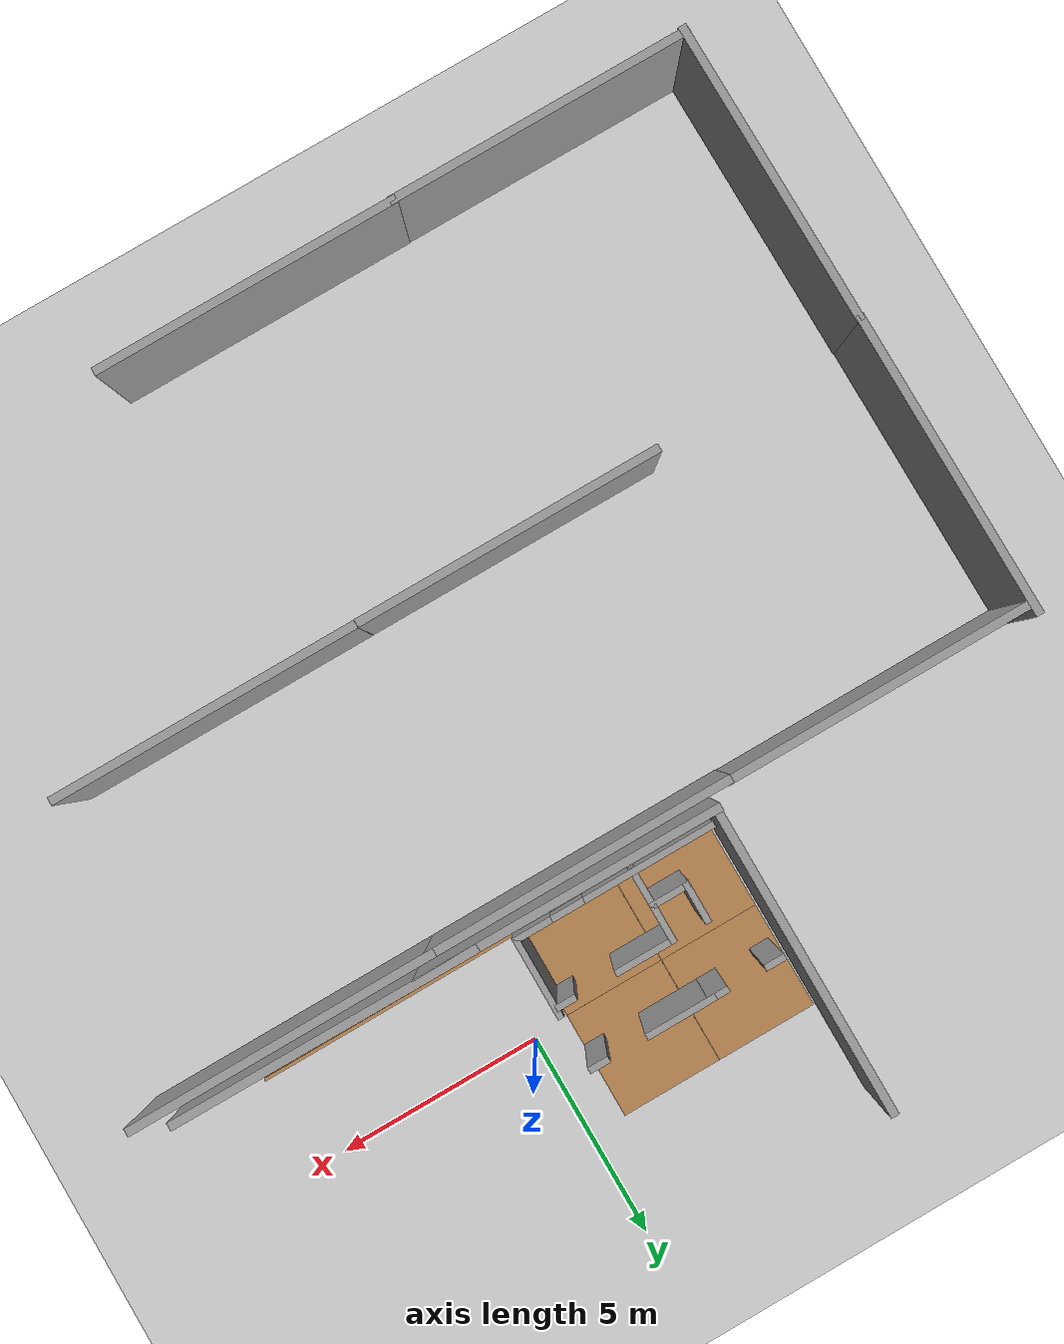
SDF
<sdf version="1.6">
 <world name="default">
  <model name="grey_wall_clone_0_clone_0_clone">
   <static>1</static>
   <link name="link">
    <pose>0 0 1.4 0 -0 0</pose>
    <collision name="collision"><geometry><box><size>7.5 0.2 2.8</size></box></geometry></collision>
    <visual name="visual">
     <cast_shadows>0</cast_shadows>
     <geometry><box><size>7.5 0.2 2.8</size></box></geometry>
     <material>
      <script>
       <uri>model://grey_wall/materials/scripts</uri>
       <uri>model://grey_wall/materials/textures</uri>
       <name>vrc/grey_wall</name>
      </script>
     </material>
    </visual>
   </link>
   <pose>3.51451 -2.7816 0 0 -0 3.13686</pose>
  </model>
  <model name="grey_wall_clone_0_clone_0_clone_0">
   <static>1</static>
   <link name="link">
    <pose>0 0 1.4 0 -0 0</pose>
    <collision name="collision"><geometry><box><size>7.5 0.2 2.8</size></box></geometry></collision>
    <visual name="visual">
     <cast_shadows>0</cast_shadows>
     <geometry><box><size>7.5 0.2 2.8</size></box></geometry>
     <material>
      <script>
       <uri>model://grey_wall/materials/scripts</uri>
       <uri>model://grey_wall/materials/textures</uri>
       <name>vrc/grey_wall</name>
      </script>
     </material>
    </visual>
   </link>
   <pose>-2.44151 -2.75862 0 0 -0 3.13686</pose>
  </model>
  <model name="grey_wall_clone_0_clone_0_clone_1">
   <static>1</static>
   <link name="link">
    <pose>0 0 1.4 0 -0 0</pose>
    <collision name="collision"><geometry><box><size>7.5 0.2 2.8</size></box></geometry></collision>
    <visual name="visual">
     <cast_shadows>0</cast_shadows>
     <geometry><box><size>7.5 0.2 2.8</size></box></geometry>
     <material>
      <script>
       <uri>model://grey_wall/materials/scripts</uri>
       <uri>model://grey_wall/materials/textures</uri>
       <name>vrc/grey_wall</name>
      </script>
     </material>
    </visual>
   </link>
   <pose>-6.06193 0.948078 0 0 0 -1.57307</pose>
  </model>
  <model name="world_frame">
   <link name="Wall_100">
    <pose>-15.3271 -4.993 -0.100255 0 -0 0</pose>
    <visual name="Wall_100_Visual">
     <pose>0 0 0.625 0 -0 0</pose>
     <geometry><box><size>6.495 0.07 1.25</size></box></geometry>
     <material>
      <script><uri>file://media/materials/scripts/gazebo.material</uri><name>Gazebo/Wood</name></script>
      <ambient>1 1 1 1</ambient>
      <shader type="pixel"/>
      <diffuse>1 1 1 1</diffuse>
      <specular>0.2 0.2 0.2 1</specular>
      <emissive>0 0 0 1</emissive>
     </material>
     <meta><layer>0</layer></meta>
    </visual>
    <collision name="Wall_100_Collision">
     <pose>0 0 0.625 0 -0 0</pose>
     <geometry><box><size>6.495 0.07 1.25</size></box></geometry>
     <surface>
      <friction>
       <ode><mu>1</mu><mu2>1</mu2><fdir1>0 0 0</fdir1><slip1>0</slip1><slip2>0</slip2></ode>
       <torsional>
        <coefficient>1</coefficient>
        <patch_radius>0</patch_radius>
        <surface_radius>0</surface_radius>
        <use_patch_radius>1</use_patch_radius>
        <ode><slip>0</slip></ode>
       </torsional>
      </friction>
      <bounce><restitution_coefficient>0</restitution_coefficient><threshold>1e+06</threshold></bounce>
      <contact>
       <collide_without_contact>0</collide_without_contact>
       <collide_without_contact_bitmask>1</collide_without_contact_bitmask>
       <collide_bitmask>1</collide_bitmask>
       <ode>
        <soft_cfm>0</soft_cfm>
        <soft_erp>0.2</soft_erp>
        <kp>1e+13</kp>
        <kd>1</kd>
        <max_vel>0.01</max_vel>
        <min_depth>0</min_depth>
       </ode>
       <bullet>
        <split_impulse>1</split_impulse>
        <split_impulse_penetration_threshold>-0.01</split_impulse_penetration_threshold>
        <soft_cfm>0</soft_cfm>
        <soft_erp>0.2</soft_erp>
        <kp>1e+13</kp>
        <kd>1</kd>
       </bullet>
      </contact>
     </surface>
    </collision>
   </link>
   <link name="Wall_131">
    <pose>-18.5396 -4.068 -0.100255 0 -0 1.5708</pose>
    <visual name="Wall_131_Visual">
     <pose>0 0 1.25 0 -0 0</pose>
     <geometry><box><size>2 0.15 2.5</size></box></geometry>
     <material>
      <script><uri>file://media/materials/scripts/gazebo.material</uri><name>Gazebo/Grey</name></script>
      <ambient>1 1 1 1</ambient>
      <shader type="pixel"/>
      <diffuse>0.7 0.7 0.7 1</diffuse>
      <specular>0.01 0.01 0.01 1</specular>
      <emissive>0 0 0 1</emissive>
     </material>
     <meta><layer>0</layer></meta>
    </visual>
    <collision name="Wall_131_Collision">
     <pose>0 0 1.25 0 -0 0</pose>
     <geometry><box><size>2 0.15 2.5</size></box></geometry>
     <surface>
      <friction>
       <ode><mu>1</mu><mu2>1</mu2><fdir1>0 0 0</fdir1><slip1>0</slip1><slip2>0</slip2></ode>
       <torsional>
        <coefficient>1</coefficient>
        <patch_radius>0</patch_radius>
        <surface_radius>0</surface_radius>
        <use_patch_radius>1</use_patch_radius>
        <ode><slip>0</slip></ode>
       </torsional>
      </friction>
      <bounce><restitution_coefficient>0</restitution_coefficient><threshold>1e+06</threshold></bounce>
      <contact>
       <collide_without_contact>0</collide_without_contact>
       <collide_without_contact_bitmask>1</collide_without_contact_bitmask>
       <collide_bitmask>1</collide_bitmask>
       <ode>
        <soft_cfm>0</soft_cfm>
        <soft_erp>0.2</soft_erp>
        <kp>1e+13</kp>
        <kd>1</kd>
        <max_vel>0.01</max_vel>
        <min_depth>0</min_depth>
       </ode>
       <bullet>
        <split_impulse>1</split_impulse>
        <split_impulse_penetration_threshold>-0.01</split_impulse_penetration_threshold>
        <soft_cfm>0</soft_cfm>
        <soft_erp>0.2</soft_erp>
        <kp>1e+13</kp>
        <kd>1</kd>
       </bullet>
      </contact>
     </surface>
    </collision>
   </link>
   <link name="Wall_138">
    <pose>-20.9646 -4.993 -0.100255 0 -0 3.14159</pose>
    <visual name="Wall_138_Visual_1">
     <pose>0.475664 0 0.5 0 -0 0</pose>
     <geometry><box><size>4.04867 0.15 1</size></box></geometry>
     <material>
      <script><uri>file://media/materials/scripts/gazebo.material</uri><name>Gazebo/Grey</name></script>
      <ambient>1 1 1 1</ambient>
      <shader type="pixel"/>
      <diffuse>0.7 0.7 0.7 1</diffuse>
      <specular>0.01 0.01 0.01 1</specular>
      <emissive>0 0 0 1</emissive>
     </material>
     <meta><layer>0</layer></meta>
    </visual>
    <visual name="Wall_138_Visual_0">
     <pose>-2.02434 0 1.25 0 -0 0</pose>
     <geometry><box><size>0.951328 0.15 2.5</size></box></geometry>
     <material>
      <script><uri>file://media/materials/scripts/gazebo.material</uri><name>Gazebo/Grey</name></script>
      <ambient>1 1 1 1</ambient>
      <shader type="pixel"/>
      <diffuse>0.7 0.7 0.7 1</diffuse>
      <specular>0.01 0.01 0.01 1</specular>
      <emissive>0 0 0 1</emissive>
     </material>
     <meta><layer>0</layer></meta>
    </visual>
    <visual name="Wall_138_Visual_2">
     <pose>0.875664 0 1.75 0 -0 0</pose>
     <geometry><box><size>3.24867 0.15 1.5</size></box></geometry>
     <material>
      <script><uri>file://media/materials/scripts/gazebo.material</uri><name>Gazebo/Grey</name></script>
      <ambient>1 1 1 1</ambient>
      <shader type="pixel"/>
      <diffuse>0.7 0.7 0.7 1</diffuse>
      <specular>0.01 0.01 0.01 1</specular>
      <emissive>0 0 0 1</emissive>
     </material>
     <meta><layer>0</layer></meta>
    </visual>
    <visual name="Wall_138_Visual_3">
     <pose>-1.14867 0 2.15 0 -0 0</pose>
     <geometry><box><size>0.8 0.15 0.7</size></box></geometry>
     <material>
      <script><uri>file://media/materials/scripts/gazebo.material</uri><name>Gazebo/Grey</name></script>
      <ambient>1 1 1 1</ambient>
      <shader type="pixel"/>
      <diffuse>0.7 0.7 0.7 1</diffuse>
      <specular>0.01 0.01 0.01 1</specular>
      <emissive>0 0 0 1</emissive>
     </material>
     <meta><layer>0</layer></meta>
    </visual>
    <collision name="Wall_138_Collision_3">
     <pose>-1.14867 0 2.15 0 -0 0</pose>
     <geometry><box><size>0.8 0.15 0.7</size></box></geometry>
     <surface>
      <friction>
       <ode><mu>1</mu><mu2>1</mu2><fdir1>0 0 0</fdir1><slip1>0</slip1><slip2>0</slip2></ode>
       <torsional>
        <coefficient>1</coefficient>
        <patch_radius>0</patch_radius>
        <surface_radius>0</surface_radius>
        <use_patch_radius>1</use_patch_radius>
        <ode><slip>0</slip></ode>
       </torsional>
      </friction>
      <bounce><restitution_coefficient>0</restitution_coefficient><threshold>1e+06</threshold></bounce>
      <contact>
       <collide_without_contact>0</collide_without_contact>
       <collide_without_contact_bitmask>1</collide_without_contact_bitmask>
       <collide_bitmask>1</collide_bitmask>
       <ode>
        <soft_cfm>0</soft_cfm>
        <soft_erp>0.2</soft_erp>
        <kp>1e+13</kp>
        <kd>1</kd>
        <max_vel>0.01</max_vel>
        <min_depth>0</min_depth>
       </ode>
       <bullet>
        <split_impulse>1</split_impulse>
        <split_impulse_penetration_threshold>-0.01</split_impulse_penetration_threshold>
        <soft_cfm>0</soft_cfm>
        <soft_erp>0.2</soft_erp>
        <kp>1e+13</kp>
        <kd>1</kd>
       </bullet>
      </contact>
     </surface>
    </collision>
    <collision name="Wall_138_Collision_2">
     <pose>0.875664 0 1.75 0 -0 0</pose>
     <geometry><box><size>3.24867 0.15 1.5</size></box></geometry>
     <surface>
      <friction>
       <ode><mu>1</mu><mu2>1</mu2><fdir1>0 0 0</fdir1><slip1>0</slip1><slip2>0</slip2></ode>
       <torsional>
        <coefficient>1</coefficient>
        <patch_radius>0</patch_radius>
        <surface_radius>0</surface_radius>
        <use_patch_radius>1</use_patch_radius>
        <ode><slip>0</slip></ode>
       </torsional>
      </friction>
      <bounce><restitution_coefficient>0</restitution_coefficient><threshold>1e+06</threshold></bounce>
      <contact>
       <collide_without_contact>0</collide_without_contact>
       <collide_without_contact_bitmask>1</collide_without_contact_bitmask>
       <collide_bitmask>1</collide_bitmask>
       <ode>
        <soft_cfm>0</soft_cfm>
        <soft_erp>0.2</soft_erp>
        <kp>1e+13</kp>
        <kd>1</kd>
        <max_vel>0.01</max_vel>
        <min_depth>0</min_depth>
       </ode>
       <bullet>
        <split_impulse>1</split_impulse>
        <split_impulse_penetration_threshold>-0.01</split_impulse_penetration_threshold>
        <soft_cfm>0</soft_cfm>
        <soft_erp>0.2</soft_erp>
        <kp>1e+13</kp>
        <kd>1</kd>
       </bullet>
      </contact>
     </surface>
    </collision>
    <collision name="Wall_138_Collision_0">
     <pose>-2.02434 0 1.25 0 -0 0</pose>
     <geometry><box><size>0.951328 0.15 2.5</size></box></geometry>
     <surface>
      <friction>
       <ode><mu>1</mu><mu2>1</mu2><fdir1>0 0 0</fdir1><slip1>0</slip1><slip2>0</slip2></ode>
       <torsional>
        <coefficient>1</coefficient>
        <patch_radius>0</patch_radius>
        <surface_radius>0</surface_radius>
        <use_patch_radius>1</use_patch_radius>
        <ode><slip>0</slip></ode>
       </torsional>
      </friction>
      <bounce><restitution_coefficient>0</restitution_coefficient><threshold>1e+06</threshold></bounce>
      <contact>
       <collide_without_contact>0</collide_without_contact>
       <collide_without_contact_bitmask>1</collide_without_contact_bitmask>
       <collide_bitmask>1</collide_bitmask>
       <ode>
        <soft_cfm>0</soft_cfm>
        <soft_erp>0.2</soft_erp>
        <kp>1e+13</kp>
        <kd>1</kd>
        <max_vel>0.01</max_vel>
        <min_depth>0</min_depth>
       </ode>
       <bullet>
        <split_impulse>1</split_impulse>
        <split_impulse_penetration_threshold>-0.01</split_impulse_penetration_threshold>
        <soft_cfm>0</soft_cfm>
        <soft_erp>0.2</soft_erp>
        <kp>1e+13</kp>
        <kd>1</kd>
       </bullet>
      </contact>
     </surface>
    </collision>
    <collision name="Wall_138_Collision_1">
     <pose>0.475664 0 0.5 0 -0 0</pose>
     <geometry><box><size>4.04867 0.15 1</size></box></geometry>
     <surface>
      <friction>
       <ode><mu>1</mu><mu2>1</mu2><fdir1>0 0 0</fdir1><slip1>0</slip1><slip2>0</slip2></ode>
       <torsional>
        <coefficient>1</coefficient>
        <patch_radius>0</patch_radius>
        <surface_radius>0</surface_radius>
        <use_patch_radius>1</use_patch_radius>
        <ode><slip>0</slip></ode>
       </torsional>
      </friction>
      <bounce><restitution_coefficient>0</restitution_coefficient><threshold>1e+06</threshold></bounce>
      <contact>
       <collide_without_contact>0</collide_without_contact>
       <collide_without_contact_bitmask>1</collide_without_contact_bitmask>
       <collide_bitmask>1</collide_bitmask>
       <ode>
        <soft_cfm>0</soft_cfm>
        <soft_erp>0.2</soft_erp>
        <kp>1e+13</kp>
        <kd>1</kd>
        <max_vel>0.01</max_vel>
        <min_depth>0</min_depth>
       </ode>
       <bullet>
        <split_impulse>1</split_impulse>
        <split_impulse_penetration_threshold>-0.01</split_impulse_penetration_threshold>
        <soft_cfm>0</soft_cfm>
        <soft_erp>0.2</soft_erp>
        <kp>1e+13</kp>
        <kd>1</kd>
       </bullet>
      </contact>
     </surface>
    </collision>
   </link>
   <link name="Wall_146">
    <pose>-21.8665 -4.15688 -0.100255 0 -0 0</pose>
    <visual name="Wall_146_Visual">
     <pose>0 0 1.25 0 -0 0</pose>
     <geometry><box><size>1 0.15 2.5</size></box></geometry>
     <material>
      <script><uri>file://media/materials/scripts/gazebo.material</uri><name>Gazebo/Grey</name></script>
      <ambient>1 1 1 1</ambient>
      <shader type="pixel"/>
      <diffuse>0.7 0.7 0.7 1</diffuse>
      <specular>0.01 0.01 0.01 1</specular>
      <emissive>0 0 0 1</emissive>
     </material>
     <meta><layer>0</layer></meta>
    </visual>
    <collision name="Wall_146_Collision">
     <pose>0 0 1.25 0 -0 0</pose>
     <geometry><box><size>1 0.15 2.5</size></box></geometry>
     <surface>
      <friction>
       <ode><mu>1</mu><mu2>1</mu2><fdir1>0 0 0</fdir1><slip1>0</slip1><slip2>0</slip2></ode>
       <torsional>
        <coefficient>1</coefficient>
        <patch_radius>0</patch_radius>
        <surface_radius>0</surface_radius>
        <use_patch_radius>1</use_patch_radius>
        <ode><slip>0</slip></ode>
       </torsional>
      </friction>
      <bounce><restitution_coefficient>0</restitution_coefficient><threshold>1e+06</threshold></bounce>
      <contact>
       <collide_without_contact>0</collide_without_contact>
       <collide_without_contact_bitmask>1</collide_without_contact_bitmask>
       <collide_bitmask>1</collide_bitmask>
       <ode>
        <soft_cfm>0</soft_cfm>
        <soft_erp>0.2</soft_erp>
        <kp>1e+13</kp>
        <kd>1</kd>
        <max_vel>0.01</max_vel>
        <min_depth>0</min_depth>
       </ode>
       <bullet>
        <split_impulse>1</split_impulse>
        <split_impulse_penetration_threshold>-0.01</split_impulse_penetration_threshold>
        <soft_cfm>0</soft_cfm>
        <soft_erp>0.2</soft_erp>
        <kp>1e+13</kp>
        <kd>1</kd>
       </bullet>
      </contact>
     </surface>
    </collision>
   </link>
   <link name="Wall_147">
    <pose>-21.4415 -3.73188 -0.100255 0 -0 1.5708</pose>
    <visual name="Wall_147_Visual">
     <pose>0 0 1.25 0 -0 0</pose>
     <geometry><box><size>1 0.15 2.5</size></box></geometry>
     <material>
      <script><uri>file://media/materials/scripts/gazebo.material</uri><name>Gazebo/Grey</name></script>
      <ambient>1 1 1 1</ambient>
      <shader type="pixel"/>
      <diffuse>0.7 0.7 0.7 1</diffuse>
      <specular>0.01 0.01 0.01 1</specular>
      <emissive>0 0 0 1</emissive>
     </material>
     <meta><layer>0</layer></meta>
    </visual>
    <collision name="Wall_147_Collision">
     <pose>0 0 1.25 0 -0 0</pose>
     <geometry><box><size>1 0.15 2.5</size></box></geometry>
     <surface>
      <friction>
       <ode><mu>1</mu><mu2>1</mu2><fdir1>0 0 0</fdir1><slip1>0</slip1><slip2>0</slip2></ode>
       <torsional>
        <coefficient>1</coefficient>
        <patch_radius>0</patch_radius>
        <surface_radius>0</surface_radius>
        <use_patch_radius>1</use_patch_radius>
        <ode><slip>0</slip></ode>
       </torsional>
      </friction>
      <bounce><restitution_coefficient>0</restitution_coefficient><threshold>1e+06</threshold></bounce>
      <contact>
       <collide_without_contact>0</collide_without_contact>
       <collide_without_contact_bitmask>1</collide_without_contact_bitmask>
       <collide_bitmask>1</collide_bitmask>
       <ode>
        <soft_cfm>0</soft_cfm>
        <soft_erp>0.2</soft_erp>
        <kp>1e+13</kp>
        <kd>1</kd>
        <max_vel>0.01</max_vel>
        <min_depth>0</min_depth>
       </ode>
       <bullet>
        <split_impulse>1</split_impulse>
        <split_impulse_penetration_threshold>-0.01</split_impulse_penetration_threshold>
        <soft_cfm>0</soft_cfm>
        <soft_erp>0.2</soft_erp>
        <kp>1e+13</kp>
        <kd>1</kd>
       </bullet>
      </contact>
     </surface>
    </collision>
   </link>
   <link name="Wall_150">
    <pose>-22.2915 -3.73188 -0.100255 0 -0 1.5708</pose>
    <visual name="Wall_150_Visual">
     <pose>0 0 1.25 0 -0 0</pose>
     <geometry><box><size>1 0.15 2.5</size></box></geometry>
     <material>
      <script><uri>file://media/materials/scripts/gazebo.material</uri><name>Gazebo/Grey</name></script>
      <ambient>1 1 1 1</ambient>
      <shader type="pixel"/>
      <diffuse>0.7 0.7 0.7 1</diffuse>
      <specular>0.01 0.01 0.01 1</specular>
      <emissive>0 0 0 1</emissive>
     </material>
     <meta><layer>0</layer></meta>
    </visual>
    <collision name="Wall_150_Collision">
     <pose>0 0 1.25 0 -0 0</pose>
     <geometry><box><size>1 0.15 2.5</size></box></geometry>
     <surface>
      <friction>
       <ode><mu>1</mu><mu2>1</mu2><fdir1>0 0 0</fdir1><slip1>0</slip1><slip2>0</slip2></ode>
       <torsional>
        <coefficient>1</coefficient>
        <patch_radius>0</patch_radius>
        <surface_radius>0</surface_radius>
        <use_patch_radius>1</use_patch_radius>
        <ode><slip>0</slip></ode>
       </torsional>
      </friction>
      <bounce><restitution_coefficient>0</restitution_coefficient><threshold>1e+06</threshold></bounce>
      <contact>
       <collide_without_contact>0</collide_without_contact>
       <collide_without_contact_bitmask>1</collide_without_contact_bitmask>
       <collide_bitmask>1</collide_bitmask>
       <ode>
        <soft_cfm>0</soft_cfm>
        <soft_erp>0.2</soft_erp>
        <kp>1e+13</kp>
        <kd>1</kd>
        <max_vel>0.01</max_vel>
        <min_depth>0</min_depth>
       </ode>
       <bullet>
        <split_impulse>1</split_impulse>
        <split_impulse_penetration_threshold>-0.01</split_impulse_penetration_threshold>
        <soft_cfm>0</soft_cfm>
        <soft_erp>0.2</soft_erp>
        <kp>1e+13</kp>
        <kd>1</kd>
       </bullet>
      </contact>
     </surface>
    </collision>
   </link>
   <link name="Wall_152">
    <pose>-21.4415 -4.58188 -0.100255 0 0 -1.5708</pose>
    <visual name="Wall_152_Visual">
     <pose>0 0 1.25 0 -0 0</pose>
     <geometry><box><size>1 0.15 2.5</size></box></geometry>
     <material>
      <script><uri>file://media/materials/scripts/gazebo.material</uri><name>Gazebo/Grey</name></script>
      <ambient>1 1 1 1</ambient>
      <shader type="pixel"/>
      <diffuse>0.7 0.7 0.7 1</diffuse>
      <specular>0.01 0.01 0.01 1</specular>
      <emissive>0 0 0 1</emissive>
     </material>
     <meta><layer>0</layer></meta>
    </visual>
    <collision name="Wall_152_Collision">
     <pose>0 0 1.25 0 -0 0</pose>
     <geometry><box><size>1 0.15 2.5</size></box></geometry>
     <surface>
      <friction>
       <ode><mu>1</mu><mu2>1</mu2><fdir1>0 0 0</fdir1><slip1>0</slip1><slip2>0</slip2></ode>
       <torsional>
        <coefficient>1</coefficient>
        <patch_radius>0</patch_radius>
        <surface_radius>0</surface_radius>
        <use_patch_radius>1</use_patch_radius>
        <ode><slip>0</slip></ode>
       </torsional>
      </friction>
      <bounce><restitution_coefficient>0</restitution_coefficient><threshold>1e+06</threshold></bounce>
      <contact>
       <collide_without_contact>0</collide_without_contact>
       <collide_without_contact_bitmask>1</collide_without_contact_bitmask>
       <collide_bitmask>1</collide_bitmask>
       <ode>
        <soft_cfm>0</soft_cfm>
        <soft_erp>0.2</soft_erp>
        <kp>1e+13</kp>
        <kd>1</kd>
        <max_vel>0.01</max_vel>
        <min_depth>0</min_depth>
       </ode>
       <bullet>
        <split_impulse>1</split_impulse>
        <split_impulse_penetration_threshold>-0.01</split_impulse_penetration_threshold>
        <soft_cfm>0</soft_cfm>
        <soft_erp>0.2</soft_erp>
        <kp>1e+13</kp>
        <kd>1</kd>
       </bullet>
      </contact>
     </surface>
    </collision>
   </link>
   <link name="Wall_154">
    <pose>-20.7665 -3.30688 -0.100255 0 -0 0</pose>
    <visual name="Wall_154_Visual">
     <pose>0 0 1.25 0 -0 0</pose>
     <geometry><box><size>1.5 0.15 2.5</size></box></geometry>
     <material>
      <script><uri>file://media/materials/scripts/gazebo.material</uri><name>Gazebo/Grey</name></script>
      <ambient>1 1 1 1</ambient>
      <shader type="pixel"/>
      <diffuse>0.7 0.7 0.7 1</diffuse>
      <specular>0.01 0.01 0.01 1</specular>
      <emissive>0 0 0 1</emissive>
     </material>
     <meta><layer>0</layer></meta>
    </visual>
    <collision name="Wall_154_Collision">
     <pose>0 0 1.25 0 -0 0</pose>
     <geometry><box><size>1.5 0.15 2.5</size></box></geometry>
     <surface>
      <friction>
       <ode><mu>1</mu><mu2>1</mu2><fdir1>0 0 0</fdir1><slip1>0</slip1><slip2>0</slip2></ode>
       <torsional>
        <coefficient>1</coefficient>
        <patch_radius>0</patch_radius>
        <surface_radius>0</surface_radius>
        <use_patch_radius>1</use_patch_radius>
        <ode><slip>0</slip></ode>
       </torsional>
      </friction>
      <bounce><restitution_coefficient>0</restitution_coefficient><threshold>1e+06</threshold></bounce>
      <contact>
       <collide_without_contact>0</collide_without_contact>
       <collide_without_contact_bitmask>1</collide_without_contact_bitmask>
       <collide_bitmask>1</collide_bitmask>
       <ode>
        <soft_cfm>0</soft_cfm>
        <soft_erp>0.2</soft_erp>
        <kp>1e+13</kp>
        <kd>1</kd>
        <max_vel>0.01</max_vel>
        <min_depth>0</min_depth>
       </ode>
       <bullet>
        <split_impulse>1</split_impulse>
        <split_impulse_penetration_threshold>-0.01</split_impulse_penetration_threshold>
        <soft_cfm>0</soft_cfm>
        <soft_erp>0.2</soft_erp>
        <kp>1e+13</kp>
        <kd>1</kd>
       </bullet>
      </contact>
     </surface>
    </collision>
   </link>
   <link name="Wall_159">
    <pose>-18.7934 -3.30493 -0.100255 0 -0 3.14159</pose>
    <visual name="Wall_159_Visual">
     <pose>0 0 1.25 0 -0 0</pose>
     <geometry><box><size>0.5 0.15 2.5</size></box></geometry>
     <material>
      <script><uri>file://media/materials/scripts/gazebo.material</uri><name>Gazebo/Grey</name></script>
      <ambient>1 1 1 1</ambient>
      <shader type="pixel"/>
      <diffuse>0.7 0.7 0.7 1</diffuse>
      <specular>0.01 0.01 0.01 1</specular>
      <emissive>0 0 0 1</emissive>
     </material>
     <meta><layer>0</layer></meta>
    </visual>
    <collision name="Wall_159_Collision">
     <pose>0 0 1.25 0 -0 0</pose>
     <geometry><box><size>0.5 0.15 2.5</size></box></geometry>
     <surface>
      <friction>
       <ode><mu>1</mu><mu2>1</mu2><fdir1>0 0 0</fdir1><slip1>0</slip1><slip2>0</slip2></ode>
       <torsional>
        <coefficient>1</coefficient>
        <patch_radius>0</patch_radius>
        <surface_radius>0</surface_radius>
        <use_patch_radius>1</use_patch_radius>
        <ode><slip>0</slip></ode>
       </torsional>
      </friction>
      <bounce><restitution_coefficient>0</restitution_coefficient><threshold>1e+06</threshold></bounce>
      <contact>
       <collide_without_contact>0</collide_without_contact>
       <collide_without_contact_bitmask>1</collide_without_contact_bitmask>
       <collide_bitmask>1</collide_bitmask>
       <ode>
        <soft_cfm>0</soft_cfm>
        <soft_erp>0.2</soft_erp>
        <kp>1e+13</kp>
        <kd>1</kd>
        <max_vel>0.01</max_vel>
        <min_depth>0</min_depth>
       </ode>
       <bullet>
        <split_impulse>1</split_impulse>
        <split_impulse_penetration_threshold>-0.01</split_impulse_penetration_threshold>
        <soft_cfm>0</soft_cfm>
        <soft_erp>0.2</soft_erp>
        <kp>1e+13</kp>
        <kd>1</kd>
       </bullet>
      </contact>
     </surface>
    </collision>
   </link>
   <link name="Wall_174">
    <pose>-20.7716 -1.813 -0.100255 0 -0 0</pose>
    <inertial>
     <inertia><ixx>0</ixx><ixy>0</ixy><ixz>0</ixz><iyy>0</iyy><iyz>0</iyz><izz>0</izz></inertia>
     <mass>0</mass>
    </inertial>
    <visual name="Wall_174_Visual">
     <pose>0 0 1.25 0 -0 0</pose>
     <geometry><box><size>1.72154 0.15 2.5</size></box></geometry>
     <material>
      <script><uri>file://media/materials/scripts/gazebo.material</uri><name>Gazebo/Grey</name></script>
      <ambient>1 1 1 1</ambient>
      <shader type="pixel"/>
      <diffuse>0.7 0.7 0.7 1</diffuse>
      <specular>0.01 0.01 0.01 1</specular>
      <emissive>0 0 0 1</emissive>
     </material>
     <meta><layer>0</layer></meta>
    </visual>
    <collision name="Wall_174_Collision">
     <pose>0 0 1.25 0 -0 0</pose>
     <geometry><box><size>1.72154 0.15 2.5</size></box></geometry>
     <surface>
      <friction>
       <ode><mu>1</mu><mu2>1</mu2><fdir1>0 0 0</fdir1><slip1>0</slip1><slip2>0</slip2></ode>
       <torsional>
        <coefficient>1</coefficient>
        <patch_radius>0</patch_radius>
        <surface_radius>0</surface_radius>
        <use_patch_radius>1</use_patch_radius>
        <ode><slip>0</slip></ode>
       </torsional>
      </friction>
      <bounce><restitution_coefficient>0</restitution_coefficient><threshold>1e+06</threshold></bounce>
      <contact>
       <collide_without_contact>0</collide_without_contact>
       <collide_without_contact_bitmask>1</collide_without_contact_bitmask>
       <collide_bitmask>1</collide_bitmask>
       <ode>
        <soft_cfm>0</soft_cfm>
        <soft_erp>0.2</soft_erp>
        <kp>1e+13</kp>
        <kd>1</kd>
        <max_vel>0.01</max_vel>
        <min_depth>0</min_depth>
       </ode>
       <bullet>
        <split_impulse>1</split_impulse>
        <split_impulse_penetration_threshold>-0.01</split_impulse_penetration_threshold>
        <soft_cfm>0</soft_cfm>
        <soft_erp>0.2</soft_erp>
        <kp>1e+13</kp>
        <kd>1</kd>
       </bullet>
      </contact>
     </surface>
    </collision>
   </link>
   <link name="Wall_176">
    <pose>-18.7419 -1.81759 -0.100255 0 -0 3.14159</pose>
    <visual name="Wall_176_Visual">
     <pose>0 0 1.25 0 -0 0</pose>
     <geometry><box><size>0.5 0.15 2.5</size></box></geometry>
     <material>
      <script><uri>file://media/materials/scripts/gazebo.material</uri><name>Gazebo/Grey</name></script>
      <ambient>1 1 1 1</ambient>
      <shader type="pixel"/>
      <diffuse>0.7 0.7 0.7 1</diffuse>
      <specular>0.01 0.01 0.01 1</specular>
      <emissive>0 0 0 1</emissive>
     </material>
     <meta><layer>0</layer></meta>
    </visual>
    <collision name="Wall_176_Collision">
     <pose>0 0 1.25 0 -0 0</pose>
     <geometry><box><size>0.5 0.15 2.5</size></box></geometry>
     <surface>
      <friction>
       <ode><mu>1</mu><mu2>1</mu2><fdir1>0 0 0</fdir1><slip1>0</slip1><slip2>0</slip2></ode>
       <torsional>
        <coefficient>1</coefficient>
        <patch_radius>0</patch_radius>
        <surface_radius>0</surface_radius>
        <use_patch_radius>1</use_patch_radius>
        <ode><slip>0</slip></ode>
       </torsional>
      </friction>
      <bounce><restitution_coefficient>0</restitution_coefficient><threshold>1e+06</threshold></bounce>
      <contact>
       <collide_without_contact>0</collide_without_contact>
       <collide_without_contact_bitmask>1</collide_without_contact_bitmask>
       <collide_bitmask>1</collide_bitmask>
       <ode>
        <soft_cfm>0</soft_cfm>
        <soft_erp>0.2</soft_erp>
        <kp>1e+13</kp>
        <kd>1</kd>
        <max_vel>0.01</max_vel>
        <min_depth>0</min_depth>
       </ode>
       <bullet>
        <split_impulse>1</split_impulse>
        <split_impulse_penetration_threshold>-0.01</split_impulse_penetration_threshold>
        <soft_cfm>0</soft_cfm>
        <soft_erp>0.2</soft_erp>
        <kp>1e+13</kp>
        <kd>1</kd>
       </bullet>
      </contact>
     </surface>
    </collision>
   </link>
   <link name="Wall_186">
    <pose>-21.6976 -1.815 -0.100255 0 -0 0</pose>
    <visual name="Wall_186_Visual">
     <pose>0 0 1.25 0 -0 0</pose>
     <geometry><box><size>0.5 0.15 2.5</size></box></geometry>
     <material>
      <script><uri>file://media/materials/scripts/gazebo.material</uri><name>Gazebo/Grey</name></script>
      <ambient>1 1 1 1</ambient>
      <shader type="pixel"/>
      <diffuse>0.7 0.7 0.7 1</diffuse>
      <specular>0.01 0.01 0.01 1</specular>
      <emissive>0 0 0 1</emissive>
     </material>
     <meta><layer>0</layer></meta>
    </visual>
    <collision name="Wall_186_Collision">
     <pose>0 0 1.25 0 -0 0</pose>
     <geometry><box><size>0.5 0.15 2.5</size></box></geometry>
     <surface>
      <friction>
       <ode><mu>1</mu><mu2>1</mu2><fdir1>0 0 0</fdir1><slip1>0</slip1><slip2>0</slip2></ode>
       <torsional>
        <coefficient>1</coefficient>
        <patch_radius>0</patch_radius>
        <surface_radius>0</surface_radius>
        <use_patch_radius>1</use_patch_radius>
        <ode><slip>0</slip></ode>
       </torsional>
      </friction>
      <bounce><restitution_coefficient>0</restitution_coefficient><threshold>1e+06</threshold></bounce>
      <contact>
       <collide_without_contact>0</collide_without_contact>
       <collide_without_contact_bitmask>1</collide_without_contact_bitmask>
       <collide_bitmask>1</collide_bitmask>
       <ode>
        <soft_cfm>0</soft_cfm>
        <soft_erp>0.2</soft_erp>
        <kp>1e+13</kp>
        <kd>1</kd>
        <max_vel>0.01</max_vel>
        <min_depth>0</min_depth>
       </ode>
       <bullet>
        <split_impulse>1</split_impulse>
        <split_impulse_penetration_threshold>-0.01</split_impulse_penetration_threshold>
        <soft_cfm>0</soft_cfm>
        <soft_erp>0.2</soft_erp>
        <kp>1e+13</kp>
        <kd>1</kd>
       </bullet>
      </contact>
     </surface>
    </collision>
   </link>
   <link name="Wall_191">
    <pose>-23.0904 -1.79885 -0.100255 0 -0 0</pose>
    <visual name="Wall_191_Visual">
     <pose>0 0 1.25 0 -0 0</pose>
     <geometry><box><size>0.5 0.15 2.5</size></box></geometry>
     <material>
      <script><uri>file://media/materials/scripts/gazebo.material</uri><name>Gazebo/Grey</name></script>
      <ambient>1 1 1 1</ambient>
      <shader type="pixel"/>
      <diffuse>0.7 0.7 0.7 1</diffuse>
      <specular>0.01 0.01 0.01 1</specular>
      <emissive>0 0 0 1</emissive>
     </material>
     <meta><layer>0</layer></meta>
    </visual>
    <collision name="Wall_191_Collision">
     <pose>0 0 1.25 0 -0 0</pose>
     <geometry><box><size>0.5 0.15 2.5</size></box></geometry>
     <surface>
      <friction>
       <ode><mu>1</mu><mu2>1</mu2><fdir1>0 0 0</fdir1><slip1>0</slip1><slip2>0</slip2></ode>
       <torsional>
        <coefficient>1</coefficient>
        <patch_radius>0</patch_radius>
        <surface_radius>0</surface_radius>
        <use_patch_radius>1</use_patch_radius>
        <ode><slip>0</slip></ode>
       </torsional>
      </friction>
      <bounce><restitution_coefficient>0</restitution_coefficient><threshold>1e+06</threshold></bounce>
      <contact>
       <collide_without_contact>0</collide_without_contact>
       <collide_without_contact_bitmask>1</collide_without_contact_bitmask>
       <collide_bitmask>1</collide_bitmask>
       <ode>
        <soft_cfm>0</soft_cfm>
        <soft_erp>0.2</soft_erp>
        <kp>1e+13</kp>
        <kd>1</kd>
        <max_vel>0.01</max_vel>
        <min_depth>0</min_depth>
       </ode>
       <bullet>
        <split_impulse>1</split_impulse>
        <split_impulse_penetration_threshold>-0.01</split_impulse_penetration_threshold>
        <soft_cfm>0</soft_cfm>
        <soft_erp>0.2</soft_erp>
        <kp>1e+13</kp>
        <kd>1</kd>
       </bullet>
      </contact>
     </surface>
    </collision>
   </link>
   <link name="Wall_229">
    <pose>-22.2321 -3.97188 -0.100255 0 0 -1.5708</pose>
    <visual name="Wall_229_Visual">
     <pose>0 0 0.0775 0 -0 0</pose>
     <geometry><box><size>2.625 2.5 0.155</size></box></geometry>
     <material>
      <script><uri>file://media/materials/scripts/gazebo.material</uri><name>Gazebo/Wood</name></script>
      <ambient>1 1 1 1</ambient>
      <shader type="pixel"/>
      <diffuse>1 1 1 1</diffuse>
      <specular>0.2 0.2 0.2 1</specular>
      <emissive>0 0 0 1</emissive>
     </material>
     <meta><layer>0</layer></meta>
    </visual>
    <collision name="Wall_229_Collision">
     <pose>0 0 0.0775 0 -0 0</pose>
     <geometry><box><size>2.625 2.5 0.155</size></box></geometry>
     <surface>
      <friction>
       <ode><mu>1</mu><mu2>1</mu2><fdir1>0 0 0</fdir1><slip1>0</slip1><slip2>0</slip2></ode>
       <torsional>
        <coefficient>1</coefficient>
        <patch_radius>0</patch_radius>
        <surface_radius>0</surface_radius>
        <use_patch_radius>1</use_patch_radius>
        <ode><slip>0</slip></ode>
       </torsional>
      </friction>
      <bounce><restitution_coefficient>0</restitution_coefficient><threshold>1e+06</threshold></bounce>
      <contact>
       <collide_without_contact>0</collide_without_contact>
       <collide_without_contact_bitmask>1</collide_without_contact_bitmask>
       <collide_bitmask>1</collide_bitmask>
       <ode>
        <soft_cfm>0</soft_cfm>
        <soft_erp>0.2</soft_erp>
        <kp>1e+13</kp>
        <kd>1</kd>
        <max_vel>0.01</max_vel>
        <min_depth>0</min_depth>
       </ode>
       <bullet>
        <split_impulse>1</split_impulse>
        <split_impulse_penetration_threshold>-0.01</split_impulse_penetration_threshold>
        <soft_cfm>0</soft_cfm>
        <soft_erp>0.2</soft_erp>
        <kp>1e+13</kp>
        <kd>1</kd>
       </bullet>
      </contact>
     </surface>
    </collision>
   </link>
   <link name="Wall_233">
    <pose>-22.2316 -1.34734 -0.100255 0 0 -1.5708</pose>
    <visual name="Wall_233_Visual">
     <pose>0 0 0.0775 0 -0 0</pose>
     <geometry><box><size>2.625 2.5 0.155</size></box></geometry>
     <material>
      <script><uri>file://media/materials/scripts/gazebo.material</uri><name>Gazebo/Wood</name></script>
      <ambient>1 1 1 1</ambient>
      <shader type="pixel"/>
      <diffuse>1 1 1 1</diffuse>
      <specular>0.2 0.2 0.2 1</specular>
      <emissive>0 0 0 1</emissive>
     </material>
     <meta><layer>0</layer></meta>
    </visual>
    <collision name="Wall_233_Collision">
     <pose>0 0 0.0775 0 -0 0</pose>
     <geometry><box><size>2.625 2.5 0.155</size></box></geometry>
     <surface>
      <friction>
       <ode><mu>1</mu><mu2>1</mu2><fdir1>0 0 0</fdir1><slip1>0</slip1><slip2>0</slip2></ode>
       <torsional>
        <coefficient>1</coefficient>
        <patch_radius>0</patch_radius>
        <surface_radius>0</surface_radius>
        <use_patch_radius>1</use_patch_radius>
        <ode><slip>0</slip></ode>
       </torsional>
      </friction>
      <bounce><restitution_coefficient>0</restitution_coefficient><threshold>1e+06</threshold></bounce>
      <contact>
       <collide_without_contact>0</collide_without_contact>
       <collide_without_contact_bitmask>1</collide_without_contact_bitmask>
       <collide_bitmask>1</collide_bitmask>
       <ode>
        <soft_cfm>0</soft_cfm>
        <soft_erp>0.2</soft_erp>
        <kp>1e+13</kp>
        <kd>1</kd>
        <max_vel>0.01</max_vel>
        <min_depth>0</min_depth>
       </ode>
       <bullet>
        <split_impulse>1</split_impulse>
        <split_impulse_penetration_threshold>-0.01</split_impulse_penetration_threshold>
        <soft_cfm>0</soft_cfm>
        <soft_erp>0.2</soft_erp>
        <kp>1e+13</kp>
        <kd>1</kd>
       </bullet>
      </contact>
     </surface>
    </collision>
   </link>
   <link name="Wall_237">
    <pose>-19.7267 -1.34744 -0.100255 0 0 -1.5708</pose>
    <visual name="Wall_237_Visual">
     <pose>0 0 0.0775 0 -0 0</pose>
     <geometry><box><size>2.625 2.5 0.155</size></box></geometry>
     <material>
      <script><uri>file://media/materials/scripts/gazebo.material</uri><name>Gazebo/Wood</name></script>
      <ambient>1 1 1 1</ambient>
      <shader type="pixel"/>
      <diffuse>1 1 1 1</diffuse>
      <specular>0.2 0.2 0.2 1</specular>
      <emissive>0 0 0 1</emissive>
     </material>
     <meta><layer>0</layer></meta>
    </visual>
    <collision name="Wall_237_Collision">
     <pose>0 0 0.0775 0 -0 0</pose>
     <geometry><box><size>2.625 2.5 0.155</size></box></geometry>
     <surface>
      <friction>
       <ode><mu>1</mu><mu2>1</mu2><fdir1>0 0 0</fdir1><slip1>0</slip1><slip2>0</slip2></ode>
       <torsional>
        <coefficient>1</coefficient>
        <patch_radius>0</patch_radius>
        <surface_radius>0</surface_radius>
        <use_patch_radius>1</use_patch_radius>
        <ode><slip>0</slip></ode>
       </torsional>
      </friction>
      <bounce><restitution_coefficient>0</restitution_coefficient><threshold>1e+06</threshold></bounce>
      <contact>
       <collide_without_contact>0</collide_without_contact>
       <collide_without_contact_bitmask>1</collide_without_contact_bitmask>
       <collide_bitmask>1</collide_bitmask>
       <ode>
        <soft_cfm>0</soft_cfm>
        <soft_erp>0.2</soft_erp>
        <kp>1e+13</kp>
        <kd>1</kd>
        <max_vel>0.01</max_vel>
        <min_depth>0</min_depth>
       </ode>
       <bullet>
        <split_impulse>1</split_impulse>
        <split_impulse_penetration_threshold>-0.01</split_impulse_penetration_threshold>
        <soft_cfm>0</soft_cfm>
        <soft_erp>0.2</soft_erp>
        <kp>1e+13</kp>
        <kd>1</kd>
       </bullet>
      </contact>
     </surface>
    </collision>
   </link>
   <link name="Wall_239">
    <pose>-19.7263 -3.97316 -0.100255 0 0 -1.5708</pose>
    <visual name="Wall_239_Visual">
     <pose>0 0 0.0775 0 -0 0</pose>
     <geometry><box><size>2.625 2.5 0.155</size></box></geometry>
     <material>
      <script><uri>file://media/materials/scripts/gazebo.material</uri><name>Gazebo/Wood</name></script>
      <ambient>1 1 1 1</ambient>
      <shader type="pixel"/>
      <diffuse>1 1 1 1</diffuse>
      <specular>0.2 0.2 0.2 1</specular>
      <emissive>0 0 0 1</emissive>
     </material>
     <meta><layer>0</layer></meta>
    </visual>
    <collision name="Wall_239_Collision">
     <pose>0 0 0.0775 0 -0 0</pose>
     <geometry><box><size>2.625 2.5 0.155</size></box></geometry>
     <surface>
      <friction>
       <ode><mu>1</mu><mu2>1</mu2><fdir1>0 0 0</fdir1><slip1>0</slip1><slip2>0</slip2></ode>
       <torsional>
        <coefficient>1</coefficient>
        <patch_radius>0</patch_radius>
        <surface_radius>0</surface_radius>
        <use_patch_radius>1</use_patch_radius>
        <ode><slip>0</slip></ode>
       </torsional>
      </friction>
      <bounce><restitution_coefficient>0</restitution_coefficient><threshold>1e+06</threshold></bounce>
      <contact>
       <collide_without_contact>0</collide_without_contact>
       <collide_without_contact_bitmask>1</collide_without_contact_bitmask>
       <collide_bitmask>1</collide_bitmask>
       <ode>
        <soft_cfm>0</soft_cfm>
        <soft_erp>0.2</soft_erp>
        <kp>1e+13</kp>
        <kd>1</kd>
        <max_vel>0.01</max_vel>
        <min_depth>0</min_depth>
       </ode>
       <bullet>
        <split_impulse>1</split_impulse>
        <split_impulse_penetration_threshold>-0.01</split_impulse_penetration_threshold>
        <soft_cfm>0</soft_cfm>
        <soft_erp>0.2</soft_erp>
        <kp>1e+13</kp>
        <kd>1</kd>
       </bullet>
      </contact>
     </surface>
    </collision>
   </link>
   <static>1</static>
   <pose>17.567 2.53985 0 0 -0 0</pose>
  </model>
  <model name="grey_wall_0">
   <static>1</static>
   <link name="link">
    <pose>0 0 1.4 0 -0 0</pose>
    <collision name="collision"><geometry><box><size>7.5 0.2 2.8</size></box></geometry></collision>
    <visual name="visual">
     <cast_shadows>0</cast_shadows>
     <geometry><box><size>7.5 0.2 2.8</size></box></geometry>
     <material>
      <script>
       <uri>model://grey_wall/materials/scripts</uri>
       <uri>model://grey_wall/materials/textures</uri>
       <name>vrc/grey_wall</name>
      </script>
     </material>
    </visual>
   </link>
   <pose>-5.18366 -10.0056 0 0 -0 0</pose>
  </model>
  <model name="grey_wall_0_clone">
   <static>1</static>
   <link name="link">
    <pose>0 0 1.4 0 -0 0</pose>
    <collision name="collision"><geometry><box><size>7.5 0.2 2.8</size></box></geometry></collision>
    <visual name="visual">
     <cast_shadows>0</cast_shadows>
     <geometry><box><size>7.5 0.2 2.8</size></box></geometry>
     <material>
      <script>
       <uri>model://grey_wall/materials/scripts</uri>
       <uri>model://grey_wall/materials/textures</uri>
       <name>vrc/grey_wall</name>
      </script>
     </material>
    </visual>
   </link>
   <pose>2.3191 -10.0004 0 0 -0 0</pose>
  </model>
  <model name="grey_wall_0_clone_1">
   <static>1</static>
   <link name="link">
    <pose>0 0 1.4 0 -0 0</pose>
    <collision name="collision"><geometry><box><size>7.5 0.2 2.8</size></box></geometry></collision>
    <visual name="visual">
     <cast_shadows>0</cast_shadows>
     <geometry><box><size>7.5 0.2 2.8</size></box></geometry>
     <material>
      <script>
       <uri>model://grey_wall/materials/scripts</uri>
       <uri>model://grey_wall/materials/textures</uri>
       <name>vrc/grey_wall</name>
      </script>
     </material>
    </visual>
   </link>
   <pose>-10.3082 -3.13215 0 0 -0 0</pose>
  </model>
  <model name="grey_wall_0_clone_2">
   <static>1</static>
   <link name="link">
    <pose>0 0 1.4 0 -0 0</pose>
    <collision name="collision"><geometry><box><size>7.5 0.2 2.8</size></box></geometry></collision>
    <visual name="visual">
     <cast_shadows>0</cast_shadows>
     <geometry><box><size>7.5 0.2 2.8</size></box></geometry>
     <material>
      <script>
       <uri>model://grey_wall/materials/scripts</uri>
       <uri>model://grey_wall/materials/textures</uri>
       <name>vrc/grey_wall</name>
      </script>
     </material>
    </visual>
   </link>
   <pose>-10.3465 -17.5375 0 0 -0 0</pose>
  </model>
  <model name="grey_wall_0_clone_2_clone">
   <static>1</static>
   <link name="link">
    <pose>0 0 1.4 0 -0 0</pose>
    <collision name="collision"><geometry><box><size>7.5 0.2 2.8</size></box></geometry></collision>
    <visual name="visual">
     <cast_shadows>0</cast_shadows>
     <geometry><box><size>7.5 0.2 2.8</size></box></geometry>
     <material>
      <script>
       <uri>model://grey_wall/materials/scripts</uri>
       <uri>model://grey_wall/materials/textures</uri>
       <name>vrc/grey_wall</name>
      </script>
     </material>
    </visual>
   </link>
   <pose>-3.01368 -17.5234 0 0 -0 0</pose>
  </model>
  <model name="grey_wall_0_clone_3_clone_0">
   <static>1</static>
   <link name="link">
    <pose>0 0 1.4 0 -0 0</pose>
    <collision name="collision"><geometry><box><size>7.5 0.2 2.8</size></box></geometry></collision>
    <visual name="visual">
     <cast_shadows>0</cast_shadows>
     <geometry><box><size>7.5 0.2 2.8</size></box></geometry>
     <material>
      <script>
       <uri>model://grey_wall/materials/scripts</uri>
       <uri>model://grey_wall/materials/textures</uri>
       <name>vrc/grey_wall</name>
      </script>
     </material>
    </visual>
   </link>
   <pose>-14.0258 -13.9355 0 0 -0 1.58105</pose>
  </model>
  <model name="grey_wall_0_clone_3_clone_1">
   <static>1</static>
   <link name="link">
    <pose>0 0 1.4 0 -0 0</pose>
    <collision name="collision"><geometry><box><size>7.5 0.2 2.8</size></box></geometry></collision>
    <visual name="visual">
     <cast_shadows>0</cast_shadows>
     <geometry><box><size>7.5 0.2 2.8</size></box></geometry>
     <material>
      <script>
       <uri>model://grey_wall/materials/scripts</uri>
       <uri>model://grey_wall/materials/textures</uri>
       <name>vrc/grey_wall</name>
      </script>
     </material>
    </visual>
   </link>
   <pose>-14.1033 -6.57456 -0 0 -0 1.57709</pose>
  </model>
  <model name="grey_wall_0_clone_1_clone">
   <static>1</static>
   <link name="link">
    <pose>0 0 1.4 0 -0 0</pose>
    <collision name="collision"><geometry><box><size>7.5 0.2 2.8</size></box></geometry></collision>
    <visual name="visual">
     <cast_shadows>0</cast_shadows>
     <geometry><box><size>7.5 0.2 2.8</size></box></geometry>
     <material>
      <script>
       <uri>model://grey_wall/materials/scripts</uri>
       <uri>model://grey_wall/materials/textures</uri>
       <name>vrc/grey_wall</name>
      </script>
     </material>
    </visual>
   </link>
   <pose>-2.93152 -3.14771 0 0 -0 0</pose>
  </model>
  <model name="grey_wall_0_clone_1_clone_0">
   <static>1</static>
   <link name="link">
    <pose>0 0 1.4 0 -0 0</pose>
    <collision name="collision"><geometry><box><size>7.5 0.2 2.8</size></box></geometry></collision>
    <visual name="visual">
     <cast_shadows>0</cast_shadows>
     <geometry><box><size>7.5 0.2 2.8</size></box></geometry>
     <material>
      <script>
       <uri>model://grey_wall/materials/scripts</uri>
       <uri>model://grey_wall/materials/textures</uri>
       <name>vrc/grey_wall</name>
      </script>
     </material>
    </visual>
   </link>
   <pose>4.35325 -3.14526 0 0 -0 0</pose>
  </model>
  <model name="ground_plane">
   <static>1</static>
   <link name="link">
    <collision name="collision">
     <geometry><plane><normal>0 0 1</normal><size>100 100</size></plane></geometry>
     <surface><friction><ode><mu>100</mu><mu2>50</mu2></ode></friction></surface>
    </collision>
    <visual name="visual">
     <cast_shadows>0</cast_shadows>
     <geometry><plane><normal>0 0 1</normal><size>100 100</size></plane></geometry>
     <material>
      <script><uri>file://media/materials/scripts/gazebo.material</uri><name>Gazebo/Grey</name></script>
     </material>
    </visual>
   </link>
   <pose>0.761598 -6.88477 0 0 -0 0</pose>
  </model>
 </world>
</sdf>
